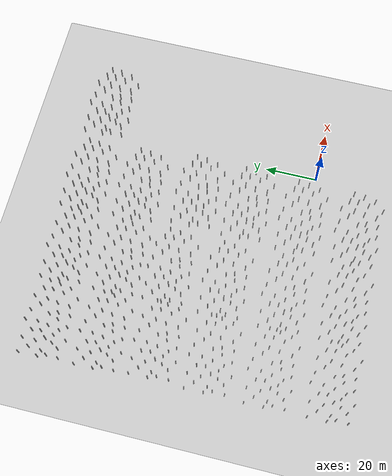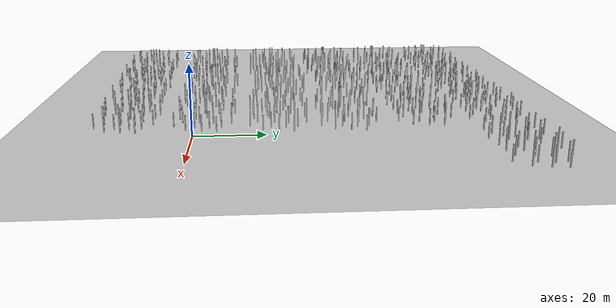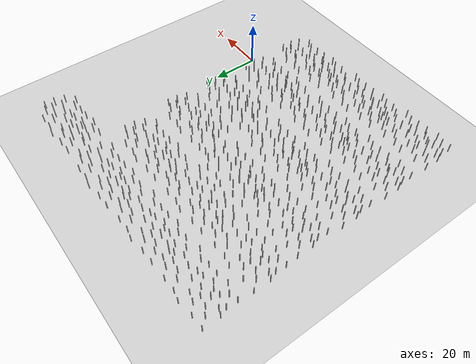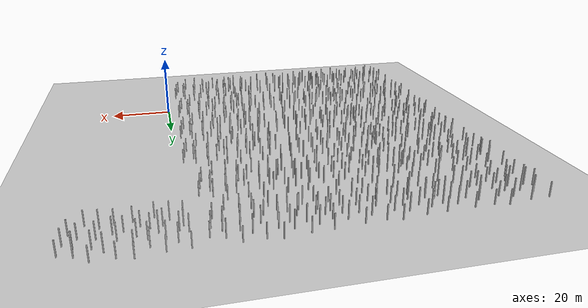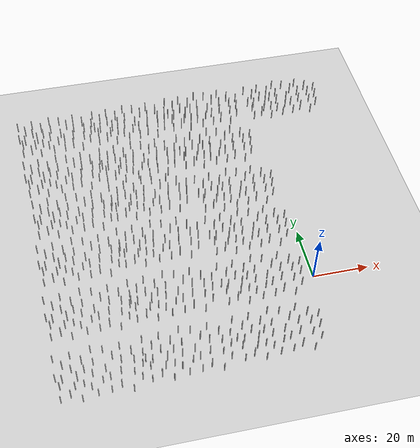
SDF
<sdf version="1.6">
 <world name="default">
  <model name="ground_plane">
   <static>1</static>
   <link name="link">
    <collision name="collision">
     <geometry><plane><normal>0 0 1</normal><size>100 100</size></plane></geometry>
     <surface><friction><ode><mu>100</mu><mu2>50</mu2></ode></friction></surface>
    </collision>
    <visual name="visual">
     <cast_shadows>0</cast_shadows>
     <geometry><plane><normal>0 0 1</normal><size>100 100</size></plane></geometry>
     <material>
      <script><uri>file://media/materials/scripts/gazebo.material</uri><name>Gazebo/Grey</name></script>
     </material>
    </visual>
   </link>
  </model>
  <model name="pillars_clone_16">
   <link name="body">
    <velocity_decay><linear>0</linear><angular>0</angular></velocity_decay>
    <visual name="visual">
     <pose>0 0 -0.001 0 -0 0</pose>
     <geometry><mesh><uri>model://pillars/pillars4.dae</uri><scale>1 1 1</scale></mesh></geometry>
    </visual>
    <collision name="pillars">
     <pose>0 0 -0.001 0 -0 0</pose>
     <geometry>
      <mesh>
       <uri>/home/huiyulin/Coding/TARE/multi_planning/Simulator/mrsl2_ws/src/mrsl_quadrotor/mrsl_models/models/pillars/pillars4.dae</uri>
       <scale>1 1 1</scale>
      </mesh>
     </geometry>
     <surface>
      <friction>
       <ode><mu>1</mu><mu2>1</mu2><fdir1>0 0 0</fdir1><slip1>0</slip1><slip2>0</slip2></ode>
       <torsional>
        <coefficient>1</coefficient>
        <patch_radius>0</patch_radius>
        <surface_radius>0</surface_radius>
        <use_patch_radius>1</use_patch_radius>
        <ode><slip>0</slip></ode>
       </torsional>
      </friction>
      <bounce><restitution_coefficient>0</restitution_coefficient><threshold>1e+06</threshold></bounce>
      <contact>
       <collide_without_contact>0</collide_without_contact>
       <collide_without_contact_bitmask>1</collide_without_contact_bitmask>
       <collide_bitmask>1</collide_bitmask>
       <ode>
        <soft_cfm>0</soft_cfm>
        <soft_erp>0.2</soft_erp>
        <kp>1e+13</kp>
        <kd>1</kd>
        <max_vel>0.01</max_vel>
        <min_depth>0</min_depth>
       </ode>
       <bullet>
        <split_impulse>1</split_impulse>
        <split_impulse_penetration_threshold>-0.01</split_impulse_penetration_threshold>
        <soft_cfm>0</soft_cfm>
        <soft_erp>0.2</soft_erp>
        <kp>1e+13</kp>
        <kd>1</kd>
       </bullet>
      </contact>
     </surface>
    </collision>
   </link>
   <static>1</static>
   <pose>-3.53474 86.8122 0 0 -0 0</pose>
  </model>
  <model name="pillars_clone_25">
   <link name="body">
    <velocity_decay><linear>0</linear><angular>0</angular></velocity_decay>
    <visual name="visual">
     <pose>0 0 -0.001 0 -0 0</pose>
     <geometry><mesh><uri>model://pillars/pillars4.dae</uri><scale>1 1 1</scale></mesh></geometry>
    </visual>
    <collision name="pillars">
     <pose>0 0 -0.001 0 -0 0</pose>
     <geometry>
      <mesh>
       <uri>/home/huiyulin/Coding/TARE/multi_planning/Simulator/mrsl2_ws/src/mrsl_quadrotor/mrsl_models/models/pillars/pillars4.dae</uri>
       <scale>1 1 1</scale>
      </mesh>
     </geometry>
     <surface>
      <friction>
       <ode><mu>1</mu><mu2>1</mu2><fdir1>0 0 0</fdir1><slip1>0</slip1><slip2>0</slip2></ode>
       <torsional>
        <coefficient>1</coefficient>
        <patch_radius>0</patch_radius>
        <surface_radius>0</surface_radius>
        <use_patch_radius>1</use_patch_radius>
        <ode><slip>0</slip></ode>
       </torsional>
      </friction>
      <bounce><restitution_coefficient>0</restitution_coefficient><threshold>1e+06</threshold></bounce>
      <contact>
       <collide_without_contact>0</collide_without_contact>
       <collide_without_contact_bitmask>1</collide_without_contact_bitmask>
       <collide_bitmask>1</collide_bitmask>
       <ode>
        <soft_cfm>0</soft_cfm>
        <soft_erp>0.2</soft_erp>
        <kp>1e+13</kp>
        <kd>1</kd>
        <max_vel>0.01</max_vel>
        <min_depth>0</min_depth>
       </ode>
       <bullet>
        <split_impulse>1</split_impulse>
        <split_impulse_penetration_threshold>-0.01</split_impulse_penetration_threshold>
        <soft_cfm>0</soft_cfm>
        <soft_erp>0.2</soft_erp>
        <kp>1e+13</kp>
        <kd>1</kd>
       </bullet>
      </contact>
     </surface>
    </collision>
   </link>
   <static>1</static>
   <pose>-37.0768 86.6674 0 0 -0 0</pose>
  </model>
  <model name="pillars_clone_26">
   <link name="body">
    <velocity_decay><linear>0</linear><angular>0</angular></velocity_decay>
    <visual name="visual">
     <pose>0 0 -0.001 0 -0 0</pose>
     <geometry><mesh><uri>model://pillars/pillars4.dae</uri><scale>1 1 1</scale></mesh></geometry>
    </visual>
    <collision name="pillars">
     <pose>0 0 -0.001 0 -0 0</pose>
     <geometry>
      <mesh>
       <uri>/home/huiyulin/Coding/TARE/multi_planning/Simulator/mrsl2_ws/src/mrsl_quadrotor/mrsl_models/models/pillars/pillars4.dae</uri>
       <scale>1 1 1</scale>
      </mesh>
     </geometry>
     <surface>
      <friction>
       <ode><mu>1</mu><mu2>1</mu2><fdir1>0 0 0</fdir1><slip1>0</slip1><slip2>0</slip2></ode>
       <torsional>
        <coefficient>1</coefficient>
        <patch_radius>0</patch_radius>
        <surface_radius>0</surface_radius>
        <use_patch_radius>1</use_patch_radius>
        <ode><slip>0</slip></ode>
       </torsional>
      </friction>
      <bounce><restitution_coefficient>0</restitution_coefficient><threshold>1e+06</threshold></bounce>
      <contact>
       <collide_without_contact>0</collide_without_contact>
       <collide_without_contact_bitmask>1</collide_without_contact_bitmask>
       <collide_bitmask>1</collide_bitmask>
       <ode>
        <soft_cfm>0</soft_cfm>
        <soft_erp>0.2</soft_erp>
        <kp>1e+13</kp>
        <kd>1</kd>
        <max_vel>0.01</max_vel>
        <min_depth>0</min_depth>
       </ode>
       <bullet>
        <split_impulse>1</split_impulse>
        <split_impulse_penetration_threshold>-0.01</split_impulse_penetration_threshold>
        <soft_cfm>0</soft_cfm>
        <soft_erp>0.2</soft_erp>
        <kp>1e+13</kp>
        <kd>1</kd>
       </bullet>
      </contact>
     </surface>
    </collision>
   </link>
   <static>1</static>
   <pose>-36.4278 65.4896 0 0 -0 0</pose>
  </model>
  <model name="pillars_clone_27">
   <link name="body">
    <velocity_decay><linear>0</linear><angular>0</angular></velocity_decay>
    <visual name="visual">
     <pose>0 0 -0.001 0 -0 0</pose>
     <geometry><mesh><uri>model://pillars/pillars4.dae</uri><scale>1 1 1</scale></mesh></geometry>
    </visual>
    <collision name="pillars">
     <pose>0 0 -0.001 0 -0 0</pose>
     <geometry>
      <mesh>
       <uri>/home/huiyulin/Coding/TARE/multi_planning/Simulator/mrsl2_ws/src/mrsl_quadrotor/mrsl_models/models/pillars/pillars4.dae</uri>
       <scale>1 1 1</scale>
      </mesh>
     </geometry>
     <surface>
      <friction>
       <ode><mu>1</mu><mu2>1</mu2><fdir1>0 0 0</fdir1><slip1>0</slip1><slip2>0</slip2></ode>
       <torsional>
        <coefficient>1</coefficient>
        <patch_radius>0</patch_radius>
        <surface_radius>0</surface_radius>
        <use_patch_radius>1</use_patch_radius>
        <ode><slip>0</slip></ode>
       </torsional>
      </friction>
      <bounce><restitution_coefficient>0</restitution_coefficient><threshold>1e+06</threshold></bounce>
      <contact>
       <collide_without_contact>0</collide_without_contact>
       <collide_without_contact_bitmask>1</collide_without_contact_bitmask>
       <collide_bitmask>1</collide_bitmask>
       <ode>
        <soft_cfm>0</soft_cfm>
        <soft_erp>0.2</soft_erp>
        <kp>1e+13</kp>
        <kd>1</kd>
        <max_vel>0.01</max_vel>
        <min_depth>0</min_depth>
       </ode>
       <bullet>
        <split_impulse>1</split_impulse>
        <split_impulse_penetration_threshold>-0.01</split_impulse_penetration_threshold>
        <soft_cfm>0</soft_cfm>
        <soft_erp>0.2</soft_erp>
        <kp>1e+13</kp>
        <kd>1</kd>
       </bullet>
      </contact>
     </surface>
    </collision>
   </link>
   <static>1</static>
   <pose>-33.8403 42.8801 0 0 -0 0</pose>
  </model>
  <model name="pillars_clone_28">
   <link name="body">
    <velocity_decay><linear>0</linear><angular>0</angular></velocity_decay>
    <visual name="visual">
     <pose>0 0 -0.001 0 -0 0</pose>
     <geometry><mesh><uri>model://pillars/pillars4.dae</uri><scale>1 1 1</scale></mesh></geometry>
    </visual>
    <collision name="pillars">
     <pose>0 0 -0.001 0 -0 0</pose>
     <geometry>
      <mesh>
       <uri>/home/huiyulin/Coding/TARE/multi_planning/Simulator/mrsl2_ws/src/mrsl_quadrotor/mrsl_models/models/pillars/pillars4.dae</uri>
       <scale>1 1 1</scale>
      </mesh>
     </geometry>
     <surface>
      <friction>
       <ode><mu>1</mu><mu2>1</mu2><fdir1>0 0 0</fdir1><slip1>0</slip1><slip2>0</slip2></ode>
       <torsional>
        <coefficient>1</coefficient>
        <patch_radius>0</patch_radius>
        <surface_radius>0</surface_radius>
        <use_patch_radius>1</use_patch_radius>
        <ode><slip>0</slip></ode>
       </torsional>
      </friction>
      <bounce><restitution_coefficient>0</restitution_coefficient><threshold>1e+06</threshold></bounce>
      <contact>
       <collide_without_contact>0</collide_without_contact>
       <collide_without_contact_bitmask>1</collide_without_contact_bitmask>
       <collide_bitmask>1</collide_bitmask>
       <ode>
        <soft_cfm>0</soft_cfm>
        <soft_erp>0.2</soft_erp>
        <kp>1e+13</kp>
        <kd>1</kd>
        <max_vel>0.01</max_vel>
        <min_depth>0</min_depth>
       </ode>
       <bullet>
        <split_impulse>1</split_impulse>
        <split_impulse_penetration_threshold>-0.01</split_impulse_penetration_threshold>
        <soft_cfm>0</soft_cfm>
        <soft_erp>0.2</soft_erp>
        <kp>1e+13</kp>
        <kd>1</kd>
       </bullet>
      </contact>
     </surface>
    </collision>
   </link>
   <static>1</static>
   <pose>-34.2567 22.7107 0 0 -0 0</pose>
  </model>
  <model name="pillars_clone_29">
   <link name="body">
    <velocity_decay><linear>0</linear><angular>0</angular></velocity_decay>
    <visual name="visual">
     <pose>0 0 -0.001 0 -0 0</pose>
     <geometry><mesh><uri>model://pillars/pillars4.dae</uri><scale>1 1 1</scale></mesh></geometry>
    </visual>
    <collision name="pillars">
     <pose>0 0 -0.001 0 -0 0</pose>
     <geometry>
      <mesh>
       <uri>/home/huiyulin/Coding/TARE/multi_planning/Simulator/mrsl2_ws/src/mrsl_quadrotor/mrsl_models/models/pillars/pillars4.dae</uri>
       <scale>1 1 1</scale>
      </mesh>
     </geometry>
     <surface>
      <friction>
       <ode><mu>1</mu><mu2>1</mu2><fdir1>0 0 0</fdir1><slip1>0</slip1><slip2>0</slip2></ode>
       <torsional>
        <coefficient>1</coefficient>
        <patch_radius>0</patch_radius>
        <surface_radius>0</surface_radius>
        <use_patch_radius>1</use_patch_radius>
        <ode><slip>0</slip></ode>
       </torsional>
      </friction>
      <bounce><restitution_coefficient>0</restitution_coefficient><threshold>1e+06</threshold></bounce>
      <contact>
       <collide_without_contact>0</collide_without_contact>
       <collide_without_contact_bitmask>1</collide_without_contact_bitmask>
       <collide_bitmask>1</collide_bitmask>
       <ode>
        <soft_cfm>0</soft_cfm>
        <soft_erp>0.2</soft_erp>
        <kp>1e+13</kp>
        <kd>1</kd>
        <max_vel>0.01</max_vel>
        <min_depth>0</min_depth>
       </ode>
       <bullet>
        <split_impulse>1</split_impulse>
        <split_impulse_penetration_threshold>-0.01</split_impulse_penetration_threshold>
        <soft_cfm>0</soft_cfm>
        <soft_erp>0.2</soft_erp>
        <kp>1e+13</kp>
        <kd>1</kd>
       </bullet>
      </contact>
     </surface>
    </collision>
   </link>
   <static>1</static>
   <pose>-34.9278 1.27986 0 0 -0 0</pose>
  </model>
  <model name="pillars_clone_30">
   <link name="body">
    <velocity_decay><linear>0</linear><angular>0</angular></velocity_decay>
    <visual name="visual">
     <pose>0 0 -0.001 0 -0 0</pose>
     <geometry><mesh><uri>model://pillars/pillars4.dae</uri><scale>1 1 1</scale></mesh></geometry>
    </visual>
    <collision name="pillars">
     <pose>0 0 -0.001 0 -0 0</pose>
     <geometry>
      <mesh>
       <uri>/home/huiyulin/Coding/TARE/multi_planning/Simulator/mrsl2_ws/src/mrsl_quadrotor/mrsl_models/models/pillars/pillars4.dae</uri>
       <scale>1 1 1</scale>
      </mesh>
     </geometry>
     <surface>
      <friction>
       <ode><mu>1</mu><mu2>1</mu2><fdir1>0 0 0</fdir1><slip1>0</slip1><slip2>0</slip2></ode>
       <torsional>
        <coefficient>1</coefficient>
        <patch_radius>0</patch_radius>
        <surface_radius>0</surface_radius>
        <use_patch_radius>1</use_patch_radius>
        <ode><slip>0</slip></ode>
       </torsional>
      </friction>
      <bounce><restitution_coefficient>0</restitution_coefficient><threshold>1e+06</threshold></bounce>
      <contact>
       <collide_without_contact>0</collide_without_contact>
       <collide_without_contact_bitmask>1</collide_without_contact_bitmask>
       <collide_bitmask>1</collide_bitmask>
       <ode>
        <soft_cfm>0</soft_cfm>
        <soft_erp>0.2</soft_erp>
        <kp>1e+13</kp>
        <kd>1</kd>
        <max_vel>0.01</max_vel>
        <min_depth>0</min_depth>
       </ode>
       <bullet>
        <split_impulse>1</split_impulse>
        <split_impulse_penetration_threshold>-0.01</split_impulse_penetration_threshold>
        <soft_cfm>0</soft_cfm>
        <soft_erp>0.2</soft_erp>
        <kp>1e+13</kp>
        <kd>1</kd>
       </bullet>
      </contact>
     </surface>
    </collision>
   </link>
   <static>1</static>
   <pose>-34.8348 -20.8764 0 0 -0 0</pose>
  </model>
  <model name="pillars_clone_36">
   <link name="body">
    <velocity_decay><linear>0</linear><angular>0</angular></velocity_decay>
    <visual name="visual">
     <pose>0 0 -0.001 0 -0 0</pose>
     <geometry><mesh><uri>model://pillars/pillars4.dae</uri><scale>1 1 1</scale></mesh></geometry>
    </visual>
    <collision name="pillars">
     <pose>0 0 -0.001 0 -0 0</pose>
     <geometry>
      <mesh>
       <uri>/home/huiyulin/Coding/TARE/multi_planning/Simulator/mrsl2_ws/src/mrsl_quadrotor/mrsl_models/models/pillars/pillars4.dae</uri>
       <scale>1 1 1</scale>
      </mesh>
     </geometry>
     <surface>
      <friction>
       <ode><mu>1</mu><mu2>1</mu2><fdir1>0 0 0</fdir1><slip1>0</slip1><slip2>0</slip2></ode>
       <torsional>
        <coefficient>1</coefficient>
        <patch_radius>0</patch_radius>
        <surface_radius>0</surface_radius>
        <use_patch_radius>1</use_patch_radius>
        <ode><slip>0</slip></ode>
       </torsional>
      </friction>
      <bounce><restitution_coefficient>0</restitution_coefficient><threshold>1e+06</threshold></bounce>
      <contact>
       <collide_without_contact>0</collide_without_contact>
       <collide_without_contact_bitmask>1</collide_without_contact_bitmask>
       <collide_bitmask>1</collide_bitmask>
       <ode>
        <soft_cfm>0</soft_cfm>
        <soft_erp>0.2</soft_erp>
        <kp>1e+13</kp>
        <kd>1</kd>
        <max_vel>0.01</max_vel>
        <min_depth>0</min_depth>
       </ode>
       <bullet>
        <split_impulse>1</split_impulse>
        <split_impulse_penetration_threshold>-0.01</split_impulse_penetration_threshold>
        <soft_cfm>0</soft_cfm>
        <soft_erp>0.2</soft_erp>
        <kp>1e+13</kp>
        <kd>1</kd>
       </bullet>
      </contact>
     </surface>
    </collision>
   </link>
   <static>1</static>
   <pose>-66.4005 45.4803 0 0 -0 0</pose>
  </model>
  <model name="pillars_clone_37">
   <link name="body">
    <velocity_decay><linear>0</linear><angular>0</angular></velocity_decay>
    <visual name="visual">
     <pose>0 0 -0.001 0 -0 0</pose>
     <geometry><mesh><uri>model://pillars/pillars4.dae</uri><scale>1 1 1</scale></mesh></geometry>
    </visual>
    <collision name="pillars">
     <pose>0 0 -0.001 0 -0 0</pose>
     <geometry>
      <mesh>
       <uri>/home/huiyulin/Coding/TARE/multi_planning/Simulator/mrsl2_ws/src/mrsl_quadrotor/mrsl_models/models/pillars/pillars4.dae</uri>
       <scale>1 1 1</scale>
      </mesh>
     </geometry>
     <surface>
      <friction>
       <ode><mu>1</mu><mu2>1</mu2><fdir1>0 0 0</fdir1><slip1>0</slip1><slip2>0</slip2></ode>
       <torsional>
        <coefficient>1</coefficient>
        <patch_radius>0</patch_radius>
        <surface_radius>0</surface_radius>
        <use_patch_radius>1</use_patch_radius>
        <ode><slip>0</slip></ode>
       </torsional>
      </friction>
      <bounce><restitution_coefficient>0</restitution_coefficient><threshold>1e+06</threshold></bounce>
      <contact>
       <collide_without_contact>0</collide_without_contact>
       <collide_without_contact_bitmask>1</collide_without_contact_bitmask>
       <collide_bitmask>1</collide_bitmask>
       <ode>
        <soft_cfm>0</soft_cfm>
        <soft_erp>0.2</soft_erp>
        <kp>1e+13</kp>
        <kd>1</kd>
        <max_vel>0.01</max_vel>
        <min_depth>0</min_depth>
       </ode>
       <bullet>
        <split_impulse>1</split_impulse>
        <split_impulse_penetration_threshold>-0.01</split_impulse_penetration_threshold>
        <soft_cfm>0</soft_cfm>
        <soft_erp>0.2</soft_erp>
        <kp>1e+13</kp>
        <kd>1</kd>
       </bullet>
      </contact>
     </surface>
    </collision>
   </link>
   <static>1</static>
   <pose>-66.8009 23.9108 0 0 -0 0</pose>
  </model>
  <model name="pillars_clone_38">
   <link name="body">
    <velocity_decay><linear>0</linear><angular>0</angular></velocity_decay>
    <visual name="visual">
     <pose>0 0 -0.001 0 -0 0</pose>
     <geometry><mesh><uri>model://pillars/pillars4.dae</uri><scale>1 1 1</scale></mesh></geometry>
    </visual>
    <collision name="pillars">
     <pose>0 0 -0.001 0 -0 0</pose>
     <geometry>
      <mesh>
       <uri>/home/huiyulin/Coding/TARE/multi_planning/Simulator/mrsl2_ws/src/mrsl_quadrotor/mrsl_models/models/pillars/pillars4.dae</uri>
       <scale>1 1 1</scale>
      </mesh>
     </geometry>
     <surface>
      <friction>
       <ode><mu>1</mu><mu2>1</mu2><fdir1>0 0 0</fdir1><slip1>0</slip1><slip2>0</slip2></ode>
       <torsional>
        <coefficient>1</coefficient>
        <patch_radius>0</patch_radius>
        <surface_radius>0</surface_radius>
        <use_patch_radius>1</use_patch_radius>
        <ode><slip>0</slip></ode>
       </torsional>
      </friction>
      <bounce><restitution_coefficient>0</restitution_coefficient><threshold>1e+06</threshold></bounce>
      <contact>
       <collide_without_contact>0</collide_without_contact>
       <collide_without_contact_bitmask>1</collide_without_contact_bitmask>
       <collide_bitmask>1</collide_bitmask>
       <ode>
        <soft_cfm>0</soft_cfm>
        <soft_erp>0.2</soft_erp>
        <kp>1e+13</kp>
        <kd>1</kd>
        <max_vel>0.01</max_vel>
        <min_depth>0</min_depth>
       </ode>
       <bullet>
        <split_impulse>1</split_impulse>
        <split_impulse_penetration_threshold>-0.01</split_impulse_penetration_threshold>
        <soft_cfm>0</soft_cfm>
        <soft_erp>0.2</soft_erp>
        <kp>1e+13</kp>
        <kd>1</kd>
       </bullet>
      </contact>
     </surface>
    </collision>
   </link>
   <static>1</static>
   <pose>-66.6975 0.912409 0 0 -0 0</pose>
  </model>
  <model name="pillars_clone_39">
   <link name="body">
    <velocity_decay><linear>0</linear><angular>0</angular></velocity_decay>
    <visual name="visual">
     <pose>0 0 -0.001 0 -0 0</pose>
     <geometry><mesh><uri>model://pillars/pillars4.dae</uri><scale>1 1 1</scale></mesh></geometry>
    </visual>
    <collision name="pillars">
     <pose>0 0 -0.001 0 -0 0</pose>
     <geometry>
      <mesh>
       <uri>/home/huiyulin/Coding/TARE/multi_planning/Simulator/mrsl2_ws/src/mrsl_quadrotor/mrsl_models/models/pillars/pillars4.dae</uri>
       <scale>1 1 1</scale>
      </mesh>
     </geometry>
     <surface>
      <friction>
       <ode><mu>1</mu><mu2>1</mu2><fdir1>0 0 0</fdir1><slip1>0</slip1><slip2>0</slip2></ode>
       <torsional>
        <coefficient>1</coefficient>
        <patch_radius>0</patch_radius>
        <surface_radius>0</surface_radius>
        <use_patch_radius>1</use_patch_radius>
        <ode><slip>0</slip></ode>
       </torsional>
      </friction>
      <bounce><restitution_coefficient>0</restitution_coefficient><threshold>1e+06</threshold></bounce>
      <contact>
       <collide_without_contact>0</collide_without_contact>
       <collide_without_contact_bitmask>1</collide_without_contact_bitmask>
       <collide_bitmask>1</collide_bitmask>
       <ode>
        <soft_cfm>0</soft_cfm>
        <soft_erp>0.2</soft_erp>
        <kp>1e+13</kp>
        <kd>1</kd>
        <max_vel>0.01</max_vel>
        <min_depth>0</min_depth>
       </ode>
       <bullet>
        <split_impulse>1</split_impulse>
        <split_impulse_penetration_threshold>-0.01</split_impulse_penetration_threshold>
        <soft_cfm>0</soft_cfm>
        <soft_erp>0.2</soft_erp>
        <kp>1e+13</kp>
        <kd>1</kd>
       </bullet>
      </contact>
     </surface>
    </collision>
   </link>
   <static>1</static>
   <pose>-65.7066 -22.1261 0 0 -0 0</pose>
  </model>
  <model name="pillars_clone_46">
   <link name="body">
    <velocity_decay><linear>0</linear><angular>0</angular></velocity_decay>
    <visual name="visual">
     <pose>0 0 -0.001 0 -0 0</pose>
     <geometry><mesh><uri>model://pillars/pillars4.dae</uri><scale>1 1 1</scale></mesh></geometry>
    </visual>
    <collision name="pillars">
     <pose>0 0 -0.001 0 -0 0</pose>
     <geometry>
      <mesh>
       <uri>/home/huiyulin/Coding/TARE/multi_planning/Simulator/mrsl2_ws/src/mrsl_quadrotor/mrsl_models/models/pillars/pillars4.dae</uri>
       <scale>1 1 1</scale>
      </mesh>
     </geometry>
     <surface>
      <friction>
       <ode><mu>1</mu><mu2>1</mu2><fdir1>0 0 0</fdir1><slip1>0</slip1><slip2>0</slip2></ode>
       <torsional>
        <coefficient>1</coefficient>
        <patch_radius>0</patch_radius>
        <surface_radius>0</surface_radius>
        <use_patch_radius>1</use_patch_radius>
        <ode><slip>0</slip></ode>
       </torsional>
      </friction>
      <bounce><restitution_coefficient>0</restitution_coefficient><threshold>1e+06</threshold></bounce>
      <contact>
       <collide_without_contact>0</collide_without_contact>
       <collide_without_contact_bitmask>1</collide_without_contact_bitmask>
       <collide_bitmask>1</collide_bitmask>
       <ode>
        <soft_cfm>0</soft_cfm>
        <soft_erp>0.2</soft_erp>
        <kp>1e+13</kp>
        <kd>1</kd>
        <max_vel>0.01</max_vel>
        <min_depth>0</min_depth>
       </ode>
       <bullet>
        <split_impulse>1</split_impulse>
        <split_impulse_penetration_threshold>-0.01</split_impulse_penetration_threshold>
        <soft_cfm>0</soft_cfm>
        <soft_erp>0.2</soft_erp>
        <kp>1e+13</kp>
        <kd>1</kd>
       </bullet>
      </contact>
     </surface>
    </collision>
   </link>
   <static>1</static>
   <pose>-95.328 -23.506 0 0 -0 0</pose>
  </model>
  <model name="pillars_clone_47">
   <link name="body">
    <velocity_decay><linear>0</linear><angular>0</angular></velocity_decay>
    <visual name="visual">
     <pose>0 0 -0.001 0 -0 0</pose>
     <geometry><mesh><uri>model://pillars/pillars4.dae</uri><scale>1 1 1</scale></mesh></geometry>
    </visual>
    <collision name="pillars">
     <pose>0 0 -0.001 0 -0 0</pose>
     <geometry>
      <mesh>
       <uri>/home/huiyulin/Coding/TARE/multi_planning/Simulator/mrsl2_ws/src/mrsl_quadrotor/mrsl_models/models/pillars/pillars4.dae</uri>
       <scale>1 1 1</scale>
      </mesh>
     </geometry>
     <surface>
      <friction>
       <ode><mu>1</mu><mu2>1</mu2><fdir1>0 0 0</fdir1><slip1>0</slip1><slip2>0</slip2></ode>
       <torsional>
        <coefficient>1</coefficient>
        <patch_radius>0</patch_radius>
        <surface_radius>0</surface_radius>
        <use_patch_radius>1</use_patch_radius>
        <ode><slip>0</slip></ode>
       </torsional>
      </friction>
      <bounce><restitution_coefficient>0</restitution_coefficient><threshold>1e+06</threshold></bounce>
      <contact>
       <collide_without_contact>0</collide_without_contact>
       <collide_without_contact_bitmask>1</collide_without_contact_bitmask>
       <collide_bitmask>1</collide_bitmask>
       <ode>
        <soft_cfm>0</soft_cfm>
        <soft_erp>0.2</soft_erp>
        <kp>1e+13</kp>
        <kd>1</kd>
        <max_vel>0.01</max_vel>
        <min_depth>0</min_depth>
       </ode>
       <bullet>
        <split_impulse>1</split_impulse>
        <split_impulse_penetration_threshold>-0.01</split_impulse_penetration_threshold>
        <soft_cfm>0</soft_cfm>
        <soft_erp>0.2</soft_erp>
        <kp>1e+13</kp>
        <kd>1</kd>
       </bullet>
      </contact>
     </surface>
    </collision>
   </link>
   <static>1</static>
   <pose>-95.8119 -0.364333 0 0 -0 0</pose>
  </model>
  <model name="pillars_clone_48">
   <link name="body">
    <velocity_decay><linear>0</linear><angular>0</angular></velocity_decay>
    <visual name="visual">
     <pose>0 0 -0.001 0 -0 0</pose>
     <geometry><mesh><uri>model://pillars/pillars4.dae</uri><scale>1 1 1</scale></mesh></geometry>
    </visual>
    <collision name="pillars">
     <pose>0 0 -0.001 0 -0 0</pose>
     <geometry>
      <mesh>
       <uri>/home/huiyulin/Coding/TARE/multi_planning/Simulator/mrsl2_ws/src/mrsl_quadrotor/mrsl_models/models/pillars/pillars4.dae</uri>
       <scale>1 1 1</scale>
      </mesh>
     </geometry>
     <surface>
      <friction>
       <ode><mu>1</mu><mu2>1</mu2><fdir1>0 0 0</fdir1><slip1>0</slip1><slip2>0</slip2></ode>
       <torsional>
        <coefficient>1</coefficient>
        <patch_radius>0</patch_radius>
        <surface_radius>0</surface_radius>
        <use_patch_radius>1</use_patch_radius>
        <ode><slip>0</slip></ode>
       </torsional>
      </friction>
      <bounce><restitution_coefficient>0</restitution_coefficient><threshold>1e+06</threshold></bounce>
      <contact>
       <collide_without_contact>0</collide_without_contact>
       <collide_without_contact_bitmask>1</collide_without_contact_bitmask>
       <collide_bitmask>1</collide_bitmask>
       <ode>
        <soft_cfm>0</soft_cfm>
        <soft_erp>0.2</soft_erp>
        <kp>1e+13</kp>
        <kd>1</kd>
        <max_vel>0.01</max_vel>
        <min_depth>0</min_depth>
       </ode>
       <bullet>
        <split_impulse>1</split_impulse>
        <split_impulse_penetration_threshold>-0.01</split_impulse_penetration_threshold>
        <soft_cfm>0</soft_cfm>
        <soft_erp>0.2</soft_erp>
        <kp>1e+13</kp>
        <kd>1</kd>
       </bullet>
      </contact>
     </surface>
    </collision>
   </link>
   <static>1</static>
   <pose>-95.8603 21.827 0 0 -0 0</pose>
  </model>
  <model name="pillars_clone_49">
   <link name="body">
    <velocity_decay><linear>0</linear><angular>0</angular></velocity_decay>
    <visual name="visual">
     <pose>0 0 -0.001 0 -0 0</pose>
     <geometry><mesh><uri>model://pillars/pillars4.dae</uri><scale>1 1 1</scale></mesh></geometry>
    </visual>
    <collision name="pillars">
     <pose>0 0 -0.001 0 -0 0</pose>
     <geometry>
      <mesh>
       <uri>/home/huiyulin/Coding/TARE/multi_planning/Simulator/mrsl2_ws/src/mrsl_quadrotor/mrsl_models/models/pillars/pillars4.dae</uri>
       <scale>1 1 1</scale>
      </mesh>
     </geometry>
     <surface>
      <friction>
       <ode><mu>1</mu><mu2>1</mu2><fdir1>0 0 0</fdir1><slip1>0</slip1><slip2>0</slip2></ode>
       <torsional>
        <coefficient>1</coefficient>
        <patch_radius>0</patch_radius>
        <surface_radius>0</surface_radius>
        <use_patch_radius>1</use_patch_radius>
        <ode><slip>0</slip></ode>
       </torsional>
      </friction>
      <bounce><restitution_coefficient>0</restitution_coefficient><threshold>1e+06</threshold></bounce>
      <contact>
       <collide_without_contact>0</collide_without_contact>
       <collide_without_contact_bitmask>1</collide_without_contact_bitmask>
       <collide_bitmask>1</collide_bitmask>
       <ode>
        <soft_cfm>0</soft_cfm>
        <soft_erp>0.2</soft_erp>
        <kp>1e+13</kp>
        <kd>1</kd>
        <max_vel>0.01</max_vel>
        <min_depth>0</min_depth>
       </ode>
       <bullet>
        <split_impulse>1</split_impulse>
        <split_impulse_penetration_threshold>-0.01</split_impulse_penetration_threshold>
        <soft_cfm>0</soft_cfm>
        <soft_erp>0.2</soft_erp>
        <kp>1e+13</kp>
        <kd>1</kd>
       </bullet>
      </contact>
     </surface>
    </collision>
   </link>
   <static>1</static>
   <pose>-95.4259 42.8575 0 0 -0 0</pose>
  </model>
  <model name="pillars_clone_34">
   <link name="body">
    <velocity_decay><linear>0</linear><angular>0</angular></velocity_decay>
    <visual name="visual">
     <pose>0 0 -0.001 0 -0 0</pose>
     <geometry><mesh><uri>model://pillars/pillars4.dae</uri><scale>1 1 1</scale></mesh></geometry>
    </visual>
    <collision name="pillars">
     <pose>0 0 -0.001 0 -0 0</pose>
     <geometry>
      <mesh>
       <uri>/home/huiyulin/Coding/TARE/multi_planning/Simulator/mrsl2_ws/src/mrsl_quadrotor/mrsl_models/models/pillars/pillars4.dae</uri>
       <scale>1 1 1</scale>
      </mesh>
     </geometry>
     <surface>
      <friction>
       <ode><mu>1</mu><mu2>1</mu2><fdir1>0 0 0</fdir1><slip1>0</slip1><slip2>0</slip2></ode>
       <torsional>
        <coefficient>1</coefficient>
        <patch_radius>0</patch_radius>
        <surface_radius>0</surface_radius>
        <use_patch_radius>1</use_patch_radius>
        <ode><slip>0</slip></ode>
       </torsional>
      </friction>
      <bounce><restitution_coefficient>0</restitution_coefficient><threshold>1e+06</threshold></bounce>
      <contact>
       <collide_without_contact>0</collide_without_contact>
       <collide_without_contact_bitmask>1</collide_without_contact_bitmask>
       <collide_bitmask>1</collide_bitmask>
       <ode>
        <soft_cfm>0</soft_cfm>
        <soft_erp>0.2</soft_erp>
        <kp>1e+13</kp>
        <kd>1</kd>
        <max_vel>0.01</max_vel>
        <min_depth>0</min_depth>
       </ode>
       <bullet>
        <split_impulse>1</split_impulse>
        <split_impulse_penetration_threshold>-0.01</split_impulse_penetration_threshold>
        <soft_cfm>0</soft_cfm>
        <soft_erp>0.2</soft_erp>
        <kp>1e+13</kp>
        <kd>1</kd>
       </bullet>
      </contact>
     </surface>
    </collision>
   </link>
   <static>1</static>
   <pose>-67.3388 85.2255 0 0 -0 0</pose>
  </model>
  <model name="pillars_clone_35">
   <link name="body">
    <velocity_decay><linear>0</linear><angular>0</angular></velocity_decay>
    <visual name="visual">
     <pose>0 0 -0.001 0 -0 0</pose>
     <geometry><mesh><uri>model://pillars/pillars4.dae</uri><scale>1 1 1</scale></mesh></geometry>
    </visual>
    <collision name="pillars">
     <pose>0 0 -0.001 0 -0 0</pose>
     <geometry>
      <mesh>
       <uri>/home/huiyulin/Coding/TARE/multi_planning/Simulator/mrsl2_ws/src/mrsl_quadrotor/mrsl_models/models/pillars/pillars4.dae</uri>
       <scale>1 1 1</scale>
      </mesh>
     </geometry>
     <surface>
      <friction>
       <ode><mu>1</mu><mu2>1</mu2><fdir1>0 0 0</fdir1><slip1>0</slip1><slip2>0</slip2></ode>
       <torsional>
        <coefficient>1</coefficient>
        <patch_radius>0</patch_radius>
        <surface_radius>0</surface_radius>
        <use_patch_radius>1</use_patch_radius>
        <ode><slip>0</slip></ode>
       </torsional>
      </friction>
      <bounce><restitution_coefficient>0</restitution_coefficient><threshold>1e+06</threshold></bounce>
      <contact>
       <collide_without_contact>0</collide_without_contact>
       <collide_without_contact_bitmask>1</collide_without_contact_bitmask>
       <collide_bitmask>1</collide_bitmask>
       <ode>
        <soft_cfm>0</soft_cfm>
        <soft_erp>0.2</soft_erp>
        <kp>1e+13</kp>
        <kd>1</kd>
        <max_vel>0.01</max_vel>
        <min_depth>0</min_depth>
       </ode>
       <bullet>
        <split_impulse>1</split_impulse>
        <split_impulse_penetration_threshold>-0.01</split_impulse_penetration_threshold>
        <soft_cfm>0</soft_cfm>
        <soft_erp>0.2</soft_erp>
        <kp>1e+13</kp>
        <kd>1</kd>
       </bullet>
      </contact>
     </surface>
    </collision>
   </link>
   <static>1</static>
   <pose>-67.2593 64.4209 0 0 -0 0</pose>
  </model>
  <model name="pillars_clone_50">
   <link name="body">
    <velocity_decay><linear>0</linear><angular>0</angular></velocity_decay>
    <visual name="visual">
     <pose>0 0 -0.001 0 -0 0</pose>
     <geometry><mesh><uri>model://pillars/pillars4.dae</uri><scale>1 1 1</scale></mesh></geometry>
    </visual>
    <collision name="pillars">
     <pose>0 0 -0.001 0 -0 0</pose>
     <geometry>
      <mesh>
       <uri>/home/huiyulin/Coding/TARE/multi_planning/Simulator/mrsl2_ws/src/mrsl_quadrotor/mrsl_models/models/pillars/pillars4.dae</uri>
       <scale>1 1 1</scale>
      </mesh>
     </geometry>
     <surface>
      <friction>
       <ode><mu>1</mu><mu2>1</mu2><fdir1>0 0 0</fdir1><slip1>0</slip1><slip2>0</slip2></ode>
       <torsional>
        <coefficient>1</coefficient>
        <patch_radius>0</patch_radius>
        <surface_radius>0</surface_radius>
        <use_patch_radius>1</use_patch_radius>
        <ode><slip>0</slip></ode>
       </torsional>
      </friction>
      <bounce><restitution_coefficient>0</restitution_coefficient><threshold>1e+06</threshold></bounce>
      <contact>
       <collide_without_contact>0</collide_without_contact>
       <collide_without_contact_bitmask>1</collide_without_contact_bitmask>
       <collide_bitmask>1</collide_bitmask>
       <ode>
        <soft_cfm>0</soft_cfm>
        <soft_erp>0.2</soft_erp>
        <kp>1e+13</kp>
        <kd>1</kd>
        <max_vel>0.01</max_vel>
        <min_depth>0</min_depth>
       </ode>
       <bullet>
        <split_impulse>1</split_impulse>
        <split_impulse_penetration_threshold>-0.01</split_impulse_penetration_threshold>
        <soft_cfm>0</soft_cfm>
        <soft_erp>0.2</soft_erp>
        <kp>1e+13</kp>
        <kd>1</kd>
       </bullet>
      </contact>
     </surface>
    </collision>
   </link>
   <static>1</static>
   <pose>-97.4036 84.3357 0 0 -0 0</pose>
  </model>
  <model name="pillars_clone_51">
   <link name="body">
    <velocity_decay><linear>0</linear><angular>0</angular></velocity_decay>
    <visual name="visual">
     <pose>0 0 -0.001 0 -0 0</pose>
     <geometry><mesh><uri>model://pillars/pillars4.dae</uri><scale>1 1 1</scale></mesh></geometry>
    </visual>
    <collision name="pillars">
     <pose>0 0 -0.001 0 -0 0</pose>
     <geometry>
      <mesh>
       <uri>/home/huiyulin/Coding/TARE/multi_planning/Simulator/mrsl2_ws/src/mrsl_quadrotor/mrsl_models/models/pillars/pillars4.dae</uri>
       <scale>1 1 1</scale>
      </mesh>
     </geometry>
     <surface>
      <friction>
       <ode><mu>1</mu><mu2>1</mu2><fdir1>0 0 0</fdir1><slip1>0</slip1><slip2>0</slip2></ode>
       <torsional>
        <coefficient>1</coefficient>
        <patch_radius>0</patch_radius>
        <surface_radius>0</surface_radius>
        <use_patch_radius>1</use_patch_radius>
        <ode><slip>0</slip></ode>
       </torsional>
      </friction>
      <bounce><restitution_coefficient>0</restitution_coefficient><threshold>1e+06</threshold></bounce>
      <contact>
       <collide_without_contact>0</collide_without_contact>
       <collide_without_contact_bitmask>1</collide_without_contact_bitmask>
       <collide_bitmask>1</collide_bitmask>
       <ode>
        <soft_cfm>0</soft_cfm>
        <soft_erp>0.2</soft_erp>
        <kp>1e+13</kp>
        <kd>1</kd>
        <max_vel>0.01</max_vel>
        <min_depth>0</min_depth>
       </ode>
       <bullet>
        <split_impulse>1</split_impulse>
        <split_impulse_penetration_threshold>-0.01</split_impulse_penetration_threshold>
        <soft_cfm>0</soft_cfm>
        <soft_erp>0.2</soft_erp>
        <kp>1e+13</kp>
        <kd>1</kd>
       </bullet>
      </contact>
     </surface>
    </collision>
   </link>
   <static>1</static>
   <pose>-96.8965 63.2272 0 0 -0 0</pose>
  </model>
 </world>
</sdf>
